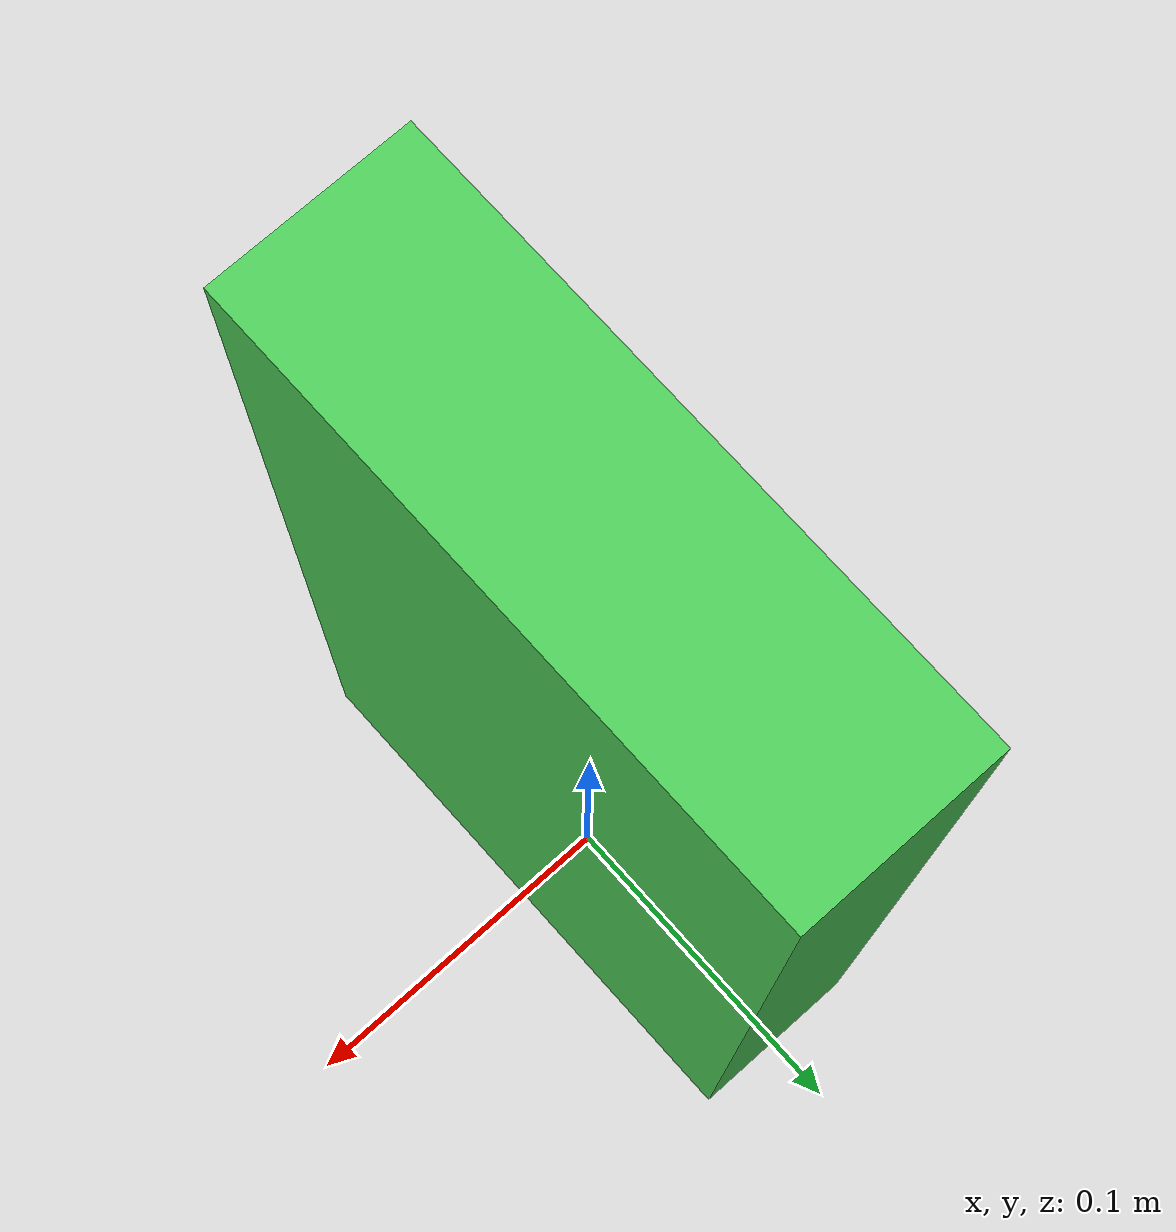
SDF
<sdf version="1.6">
    <model name="box5">
        <allow_auto_disable>true</allow_auto_disable>
        <link name="link_1">
            <kinematic>true</kinematic>
            <pose>0 0 0.15 0 0 0 0</pose>
            <inertial>
                <pose>0 0 -0.08 0 0 0 0</pose>
                <inertia>
                    <ixx>0.017666666666666667</ixx>
                    <ixy>0</ixy>
                    <ixz>0</ixz>
                    <iyy>0.019333333333333334</iyy>
                    <iyz>0</iyz>
                    <izz>0.004333333333333333</izz>
                </inertia>
                <mass>10.0</mass>
            </inertial>
            <visual name="visual">
                <geometry>
                    <box>
                        <size>0.05 0.16 0.3</size>
                    </box>
                </geometry>
                    <material>
                    <ambient>0.4 0.95 0.35 1.0</ambient>
                    <diffuse>0.3 0.8 0.35 1.0</diffuse>
                    </material>
            </visual>
            <collision name="box_collision">
                <geometry>
                    <box>
                        <size>0.05 0.16 0.3</size>
                    </box>
                </geometry>
                <surface>
                    <friction>
                        <ode>
                            <mu>1.0</mu>
                            <mu2>1.0</mu2>
                        </ode>
                    </friction>
                    <contact>
                        <ode>
                            <kp>1e15</kp>
                            <kd>1e12</kd>
                        </ode>
                    </contact>
                </surface>
            </collision>
        </link>
    </model>
</sdf>
